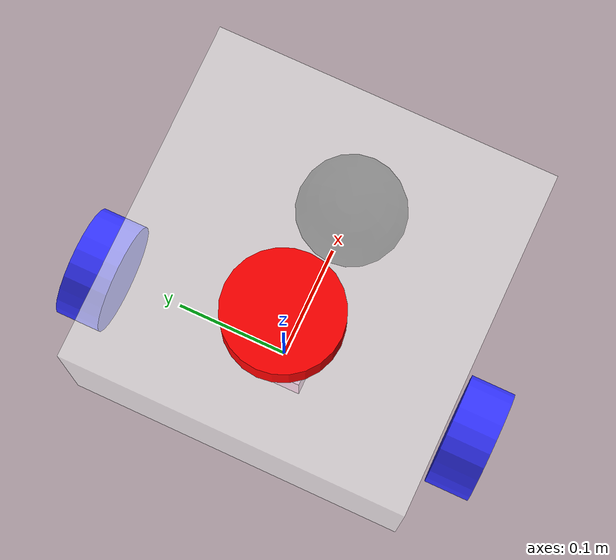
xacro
<?xml version="1.0"?>
<robot xmlns:xacro="http://www.ros.org/wiki/xacro"  name="robot">

    <!-- Example link -->
    <xacro:include filename="robot_core.xacro"/>
    <xacro:include filename="properties.xacro"/>
    <xacro:include filename="ros2_control.xacro"/>
    <xacro:include filename="lidar.xacro"/>
    <xacro:include filename="imu.xacro"/>

</robot>

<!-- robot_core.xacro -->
<robot xmlns:xacro="http://www.ros.org/wiki/xacro">

    <!-- Example link -->
    <xacro:include filename="inertial_macros.xacro"/>

    <!-- Example link -->
    <link name="base_link">
    </link>

    <joint name="base_link" type="fixed">
        <parent link="base_link"/>
        <child link="chassis"/>
        <origin xyz="-0.1 0 0"/>
    </joint>

    <!-- chassis link -->
    <link name="chassis">
        <visual>
            <origin xyz="0.15 0 0.075"/>
            <geometry>
                <box size="0.3 0.3 0.15"/>
            </geometry>
            <material name="white"/>
        </visual>
        <collision>
            <origin xyz="0.15 0 0.075"/>
            <geometry>
                <box size="0.3 0.3 0.15"/>
            </geometry>
        </collision>
        <xacro:inertial_box mass="0.5" x="0.3" y="0.3" z="0.15">
            <origin xyz="0.15 0 0.075" rpy="0 0 0"/>
        </xacro:inertial_box>
    </link>

    <!-- left wheel joint -->
    <joint name="left_wheel_joint" type="continuous">
        <parent link="base_link"/>
        <child link="left_wheel"/>
        <origin xyz="0 0.175 0" rpy="-${pi/2} 0 0"/>
        <axis xyz="0 0 1"/>
    </joint>

    <!-- left wheel link -->
    <link name="left_wheel">
        <visual>
            <geometry>
                <cylinder radius="0.05" length="0.04"/>
            </geometry>
            <material name="blue"/>
        </visual>
        <collision>
            <geometry>
                <sphere radius="0.05"/>
            </geometry>
        </collision>
         <xacro:inertial_cylinder mass="0.1" length="0.04" radius="0.05">
            <origin xyz="0 0 0" rpy="0 0 0"/>
        </xacro:inertial_cylinder>
    </link>

    <!-- right wheel joint -->
    <joint name="right_wheel_joint" type="continuous">
        <parent link="base_link"/>
        <child link="right_wheel"/>
        <origin xyz="0 -0.175 0" rpy="${pi/2} 0 0"/>
        <axis xyz="0 0 -1"/>
    </joint>

    <!-- right wheel link -->
    <link name="right_wheel">
        <visual>
            <geometry>
                <cylinder radius="0.05" length="0.04"/>
            </geometry>
            <material name="blue"/>
        </visual>
        <collision>
            <geometry>
                <sphere radius="0.05"/>
            </geometry>
        </collision>
         <xacro:inertial_cylinder mass="0.1" length="0.04" radius="0.05">
            <origin xyz="0 0 0" rpy="0 0 0"/>
        </xacro:inertial_cylinder>
    </link>

    <!-- caster wheel joint -->
    <joint name="caster_wheel_joint" type="fixed">
        <parent link="chassis"/>
        <child link="caster_wheel"/>
        <origin xyz="0.24 0 0"/>
    </joint>

    <!-- left wheel link -->
    <link name="caster_wheel">
        <visual>
            <geometry>
                <sphere radius="0.05"/>
            </geometry>
            <material name="black"/>
        </visual>
        <collision>
            <geometry>
                <sphere radius="0.05"/>
            </geometry>
        </collision>
        <xacro:inertial_sphere mass="0.1" radius="0.05">
            <origin xyz="0 0 0" rpy="0 0 0"/>
        </xacro:inertial_sphere>
    </link>

    <gazebo reference="chassis">
        <material>Gazebo/White</material>
    </gazebo>

    <gazebo reference="left_wheel">
        <material>Gazebo/Blue</material>
    </gazebo>

    <gazebo reference="right_wheel">
        <material>Gazebo/Blue</material>
    </gazebo>

    <gazebo reference="caster_wheel">
        <material>Gazebo/Black</material>
        <mu1 value = "0.001" />
        <mu2 value = "0.001" />
    </gazebo>

</robot>

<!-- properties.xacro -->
<robot xmlns:xacro="http://www.ros.org/wiki/xacro">
    <!-- Color Definitions -->
    <material name="white">
        <color rgba= "1 1 1 0.6"/>
    </material>

    <material name="orange">
        <color rgba= "1 0.3 0.1 1"/>
    </material>

    <material name="blue">
        <color rgba= "0.2 0.2 1 1"/>
    </material>

    <material name="black">
        <color rgba= "0 0 0 1"/>
    </material>

    <material name="red">
        <color rgba= "1 0 0 1"/>
    </material>
</robot>

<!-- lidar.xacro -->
<robot xmlns:xacro="http://www.ros.org/wiki/xacro">

    <!-- lidar joint -->
    <joint name="laser_joint" type="fixed">
        <parent link="chassis"/>
        <child link="laser_frame"/>
        <origin xyz="0.1 0 0.175" rpy="0 0 0"/>
    </joint>

    <!-- laser_frame -->
    <link name="laser_frame">
        <visual>
            <geometry>
                <cylinder radius="0.05" length="0.04"/>
            </geometry>
            <material name="red"/>
        </visual>
        <collision>
            <geometry>
                <cylinder radius="0.05" length="0.04"/>
            </geometry>
        </collision>
        <xacro:inertial_cylinder mass="0.1" length="0.04" radius="0.05">
            <origin xyz="0 0 0" rpy="0 0 0"/>
        </xacro:inertial_cylinder>
    </link>

    <gazebo reference="laser_frame">
        <material>Gazebo/Red</material>
        <sensor name="laser" type="ray">
            <pose>0 0 0 0 0 0</pose>
            <visualize>true</visualize>
            <update_rate>10</update_rate>
            <ray>
                <scan>
                    <horizontal>
					<!--samples> is the number of simulated lidar rays to generate per complete laser sweep cycle.-->
                        <samples>360</samples>
					<!--resolution>: this number is multiplied by samples to determine the number range data points.-->
                        <resolution>1</resolution>
                        <min_angle>-3.14</min_angle>
                        <max_angle>3.14</max_angle>
                    </horizontal>
                </scan>
                <range>
                    <min>0.3</min>
                    <max>12</max>
                    <resolution>0.01</resolution>
                </range>
            </ray>
            <plugin name="laser_controller" filename="libgazebo_ros_ray_sensor.so">
                <ros>
                    <remapping>~/out:=scan</remapping>
                </ros>
                <output_type>sensor_msgs/LaserScan</output_type>
                <frame_name>laser_frame</frame_name>
            </plugin>
        </sensor>
    </gazebo>

</robot>

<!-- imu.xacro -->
<robot xmlns:xacro="http://www.ros.org/wiki/xacro" >

<link name="imu_link">
  <visual>
    <geometry>
      <box size="0.05 0.05 0.05"/>
    </geometry>
  </visual>

  <collision>
    <geometry>
      <box size="0.05 0.05 0.05"/>
    </geometry>
  </collision>

  <xacro:inertial_box mass="0.125" x="0.1" y="0.1" z="0.1">
            <origin xyz="0 0 0" rpy="0 0 0"/>
        </xacro:inertial_box>
</link>

<joint name="imu_joint" type="fixed">
  <parent link="base_link"/>
  <child link="imu_link"/>
  <origin xyz="0 0 0.01"/>
</joint>

 <gazebo reference="imu_link">
  <sensor name="imu_sensor" type="imu">
   <plugin filename="libgazebo_ros_imu_sensor.so" name="imu_plugin">
      <ros>
        <remapping>~/out:=imu</remapping>
      </ros>
      <initial_orientation_as_reference>false</initial_orientation_as_reference>
    </plugin>
    <always_on>true</always_on>
    <update_rate>100</update_rate>
    <visualize>true</visualize>
    <imu>
      <angular_velocity>
        <x>
          <noise type="gaussian">
            <mean>0.0</mean>
            <stddev>2e-4</stddev>
            <bias_mean>0.0000075</bias_mean>
            <bias_stddev>0.0000008</bias_stddev>
          </noise>
        </x>
        <y>
          <noise type="gaussian">
            <mean>0.0</mean>
            <stddev>2e-4</stddev>
            <bias_mean>0.0000075</bias_mean>
            <bias_stddev>0.0000008</bias_stddev>
          </noise>
        </y>
        <z>
          <noise type="gaussian">
            <mean>0.0</mean>
            <stddev>2e-4</stddev>
            <bias_mean>0.0000075</bias_mean>
            <bias_stddev>0.0000008</bias_stddev>
          </noise>
        </z>
      </angular_velocity>
      <linear_acceleration>
        <x>
          <noise type="gaussian">
            <mean>0.0</mean>
            <stddev>1.7e-2</stddev>
            <bias_mean>0.1</bias_mean>
            <bias_stddev>0.001</bias_stddev>
          </noise>
        </x>
        <y>
          <noise type="gaussian">
            <mean>0.0</mean>
            <stddev>1.7e-2</stddev>
            <bias_mean>0.1</bias_mean>
            <bias_stddev>0.001</bias_stddev>
          </noise>
        </y>
        <z>
          <noise type="gaussian">
            <mean>0.0</mean>
            <stddev>1.7e-2</stddev>
            <bias_mean>0.1</bias_mean>
            <bias_stddev>0.001</bias_stddev>
          </noise>
        </z>
      </linear_acceleration>
    </imu>
  </sensor>
</gazebo>

</robot>
